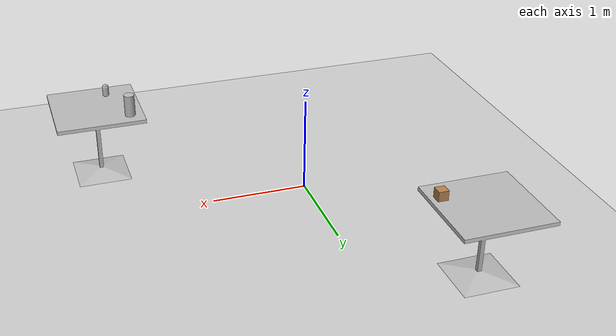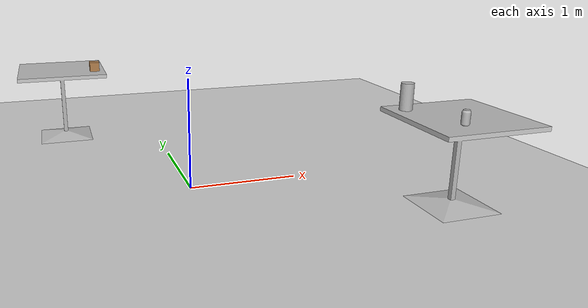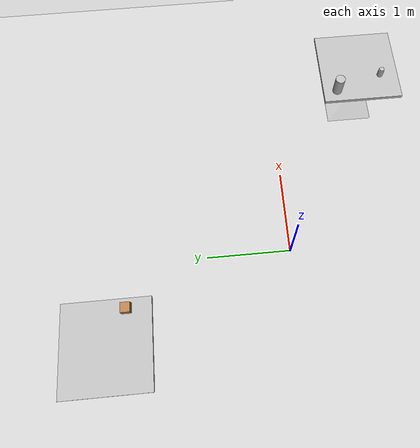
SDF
<sdf version="1.7">
 <world name="default">
  <light name="sun" type="directional">
   <pose>0 0 10 0 -0 0</pose>
   <diffuse>0.8 0.8 0.8 1</diffuse>
   <specular>0.2 0.2 0.2 1</specular>
   <attenuation>
    <range>1000</range>
    <constant>0.9</constant>
    <linear>0.01</linear>
    <quadratic>0.001</quadratic>
   </attenuation>
   <direction>-0.5 0.1 -0.9</direction>
   <spot><inner_angle>0</inner_angle><outer_angle>0</outer_angle><falloff>0</falloff></spot>
  </light>
  <model name="ground_plane">
   <static>1</static>
   <link name="link">
    <collision name="collision">
     <geometry><plane><normal>0 0 1</normal><size>100 100</size></plane></geometry>
     <surface>
      <contact><collide_bitmask>65535</collide_bitmask></contact>
      <friction><ode><mu>100</mu><mu2>50</mu2></ode></friction>
     </surface>
    </collision>
    <visual name="visual">
     <cast_shadows>0</cast_shadows>
     <geometry><plane><normal>0 0 1</normal><size>100 100</size></plane></geometry>
     <material>
      <script><uri>file://media/materials/scripts/gazebo.material</uri><name>Gazebo/Grey</name></script>
     </material>
    </visual>
   </link>
  </model>
  <gravity>0 0 -9.8</gravity>
  <magnetic_field>6e-06 2.3e-05 -4.2e-05</magnetic_field>
  <atmosphere type="adiabatic"/>
  <physics type="ode">
   <max_step_size>0.001</max_step_size>
   <real_time_factor>1</real_time_factor>
   <real_time_update_rate>1000</real_time_update_rate>
  </physics>
  <scene><ambient>0.4 0.4 0.4 1</ambient><background>0.7 0.7 0.7 1</background><shadows>1</shadows></scene>
  <spherical_coordinates>
   <surface_model>EARTH_WGS84</surface_model>
   <latitude_deg>0</latitude_deg>
   <longitude_deg>0</longitude_deg>
   <elevation>0</elevation>
   <heading_deg>0</heading_deg>
  </spherical_coordinates>
  <model name="cafe_table">
   <static>1</static>
   <link name="link">
    <collision name="surface">
     <pose>0 0 0.755 0 -0 0</pose>
     <geometry><box><size>0.913 0.913 0.04</size></box></geometry>
    </collision>
    <collision name="column">
     <pose>0 0 0.37 0 -0 0</pose>
     <geometry><box><size>0.042 0.042 0.74</size></box></geometry>
    </collision>
    <collision name="base">
     <pose>0 0 0.02 0 -0 0</pose>
     <geometry><box><size>0.56 0.56 0.04</size></box></geometry>
    </collision>
    <visual name="visual">
     <geometry><mesh><uri>model://cafe_table/meshes/cafe_table.dae</uri></mesh></geometry>
    </visual>
   </link>
   <pose>2.00322 -0.999866 0 0 -0 0</pose>
  </model>
  <model name="beer">
   <link name="link">
    <pose>0 0 0.115 0 -0 0</pose>
    <inertial>
     <mass>0.39</mass>
     <inertia><ixx>0.00058</ixx><ixy>0</ixy><ixz>0</ixz><iyy>0.00058</iyy><iyz>0</iyz><izz>0.00019</izz></inertia>
    </inertial>
    <collision name="collision">
     <geometry><cylinder><radius>0.055</radius><length>0.23</length></cylinder></geometry>
    </collision>
    <visual name="visual">
     <geometry><cylinder><radius>0.055</radius><length>0.23</length></cylinder></geometry>
     <material>
      <script>
       <uri>model://beer/materials/scripts</uri>
       <uri>model://beer/materials/textures</uri>
       <name>Beer/Diffuse</name>
      </script>
     </material>
    </visual>
   </link>
   <pose>1.68561 -0.704258 0.77499 1e-06 -2.7e-05 0.001048</pose>
  </model>
  <model name="coke_can">
   <link name="link">
    <inertial>
     <pose>0 0 0.06 0 -0 0</pose>
     <mass>0.39</mass>
     <inertia>
      <ixx>0.00055575</ixx>
      <ixy>0</ixy>
      <ixz>0</ixz>
      <iyy>0.00055575</iyy>
      <iyz>0</iyz>
      <izz>0.0001755</izz>
     </inertia>
    </inertial>
    <collision name="collision">
     <pose>0.003937 0.004724 -0.18 0 -0 0</pose>
     <geometry><mesh><uri>model://coke_can/meshes/coke_can.dae</uri></mesh></geometry>
     <surface>
      <friction><ode><mu>1</mu><mu2>1</mu2></ode></friction>
      <contact><ode><kp>1e+07</kp><kd>1</kd><min_depth>0.001</min_depth><max_vel>0.1</max_vel></ode></contact>
     </surface>
    </collision>
    <visual name="visual">
     <pose>0.003937 0.004724 -0.18 0 -0 0</pose>
     <geometry><mesh><uri>model://coke_can/meshes/coke_can.dae</uri></mesh></geometry>
    </visual>
   </link>
   <pose>1.8512 -1.24002 0.772432 -0.010521 0.003757 -0.014147</pose>
  </model>
  <model name="cafe_table_0">
   <static>1</static>
   <link name="link">
    <collision name="surface">
     <pose>0 0 0.755 0 -0 0</pose>
     <geometry><box><size>0.913 0.913 0.04</size></box></geometry>
    </collision>
    <collision name="column">
     <pose>0 0 0.37 0 -0 0</pose>
     <geometry><box><size>0.042 0.042 0.74</size></box></geometry>
    </collision>
    <collision name="base">
     <pose>0 0 0.02 0 -0 0</pose>
     <geometry><box><size>0.56 0.56 0.04</size></box></geometry>
    </collision>
    <visual name="visual">
     <geometry><mesh><uri>model://cafe_table/meshes/cafe_table.dae</uri></mesh></geometry>
    </visual>
   </link>
   <pose>-1 2 0 0 -0 0</pose>
  </model>
  <model name="wood_cube_10cm">
   <link name="link">
    <pose>0 0 0.05 0 -0 0</pose>
    <inertial>
     <mass>0.5167</mass>
     <inertia>
      <ixx>0.000861167</ixx>
      <ixy>0</ixy>
      <ixz>0</ixz>
      <iyy>0.000861167</iyy>
      <iyz>0</iyz>
      <izz>0.000861167</izz>
     </inertia>
    </inertial>
    <collision name="collision">
     <geometry><box><size>0.1 0.1 0.1</size></box></geometry>
     <surface>
      <contact>
       <poissons_ratio>0.347</poissons_ratio>
       <elastic_modulus>8.8e+09</elastic_modulus>
       <ode><kp>100000</kp><kd>100</kd><max_vel>100</max_vel><min_depth>0.001</min_depth></ode>
      </contact>
      <friction>
       <torsional>
        <coefficient>1</coefficient>
        <use_patch_radius>0</use_patch_radius>
        <surface_radius>0.01</surface_radius>
       </torsional>
      </friction>
     </surface>
    </collision>
    <visual name="visual">
     <geometry><box><size>0.1 0.1 0.1</size></box></geometry>
     <material>
      <script><uri>file://media/materials/scripts/gazebo.material</uri><name>Gazebo/Wood</name></script>
     </material>
    </visual>
   </link>
   <pose>-0.648705 1.79348 0.773987 0 -0 -1e-06</pose>
  </model>
 </world>
</sdf>
